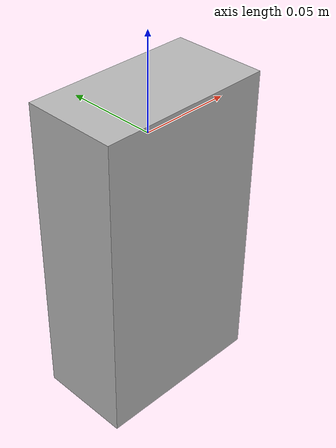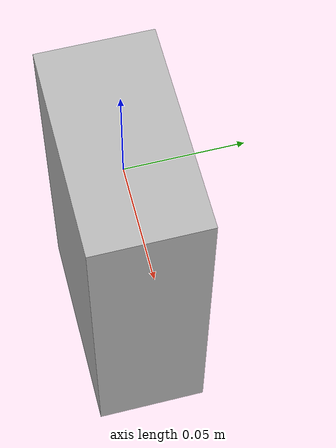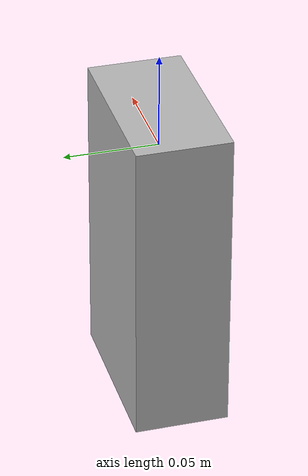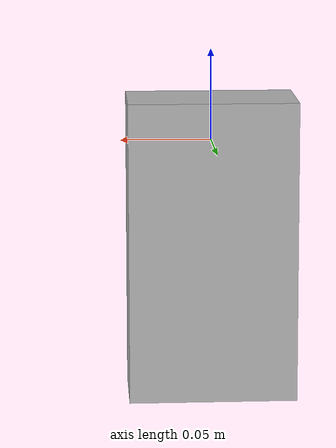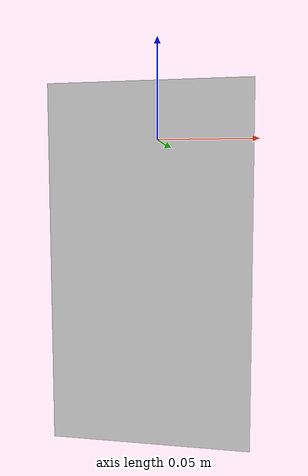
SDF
<?xml version="1.0"?>
<sdf version="1.6">
  <model name="laser_profiler">
    <static>true</static>
    <pose>0 0 0 0 0 0</pose>

    <link name="laser_profiler_body">
      <inertial>
        <mass>0.1</mass>
      </inertial>

     <visual name="visual">
        <pose>0 0 -0.06 0 0 0</pose>
        <geometry>
          <box>
            <size>0.093 0.05 0.167</size>
          </box>
        </geometry>
      </visual>

      <sensor type="gpu_lidar" name="laser_profiler">
        <topic>ariac/sensors/laser_profiler/scan</topic>
        <lidar>
          <scan>
            <horizontal>
              <samples>400</samples>
              <resolution>1</resolution>
              <min_angle>-0.35</min_angle>
              <max_angle>0.35</max_angle>
            </horizontal>
          </scan>
          <range>
            <min>0.181</min>
            <max>0.725</max>
            <resolution>0.001</resolution>
          </range>
          <!-- Using gazebo's noise instead of plugin's -->
          <noise>
            <type>gaussian</type>
            <mean>0.0</mean>
            <stddev>0.001</stddev>
          </noise>
        </lidar>
        <!-- Using gazebo's update rate instead of plugin's -->
        <update_rate>30</update_rate>
        <visualize>true</visualize>

        <plugin name="ariac_sensors::AriacRayPlugin" filename="libAriacRayPlugin.so">
          <gz_topic>ariac/sensors/laser_profiler/scan</gz_topic>
          <sensor_type>laser_profiler</sensor_type>
          <sensor_name>laser_profiler</sensor_name>
          <frame_name>laser_profiler_frame</frame_name>
        </plugin>
      </sensor>
    </link>
  </model>
</sdf>
